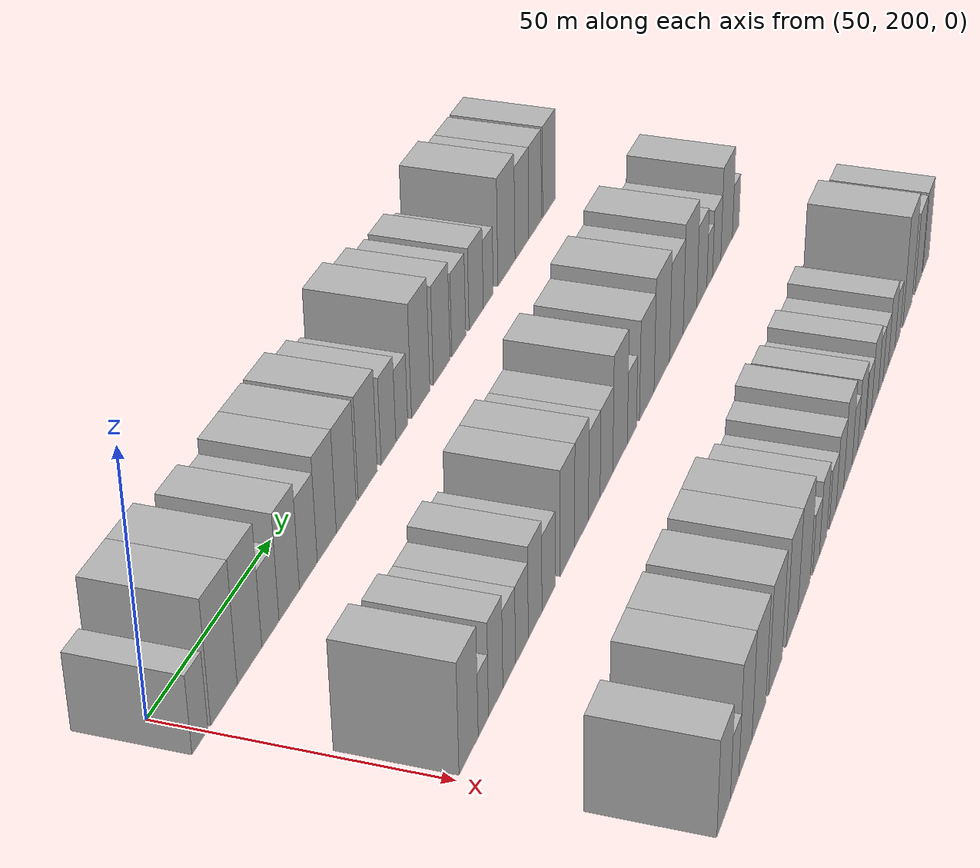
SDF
<sdf version="1.6">
 <world name="default">
  <model name="building_63">
   <static>1</static>
   <pose>50.0000 197.3361 0 0.000000 0.000000 0.000000</pose>
   <link name="link">
    <pose>0 0 7.50 0 0 0</pose>
    <collision name="collision"><geometry><box><size>20.0000 6.0712 15.0000</size></box></geometry></collision>
    <visual name="visual">
     <cast_shadows>0</cast_shadows>
     <geometry><box><size>20.0000 6.0712 15.0000</size></box></geometry>
     <material>
      <script>
       <uri>model://HANNAS_wall/materials/scripts</uri>
       <uri>model://HANNAS_wall/materials/textures</uri>
       <name>vrc/HANNAS_wall</name>
      </script>
     </material>
    </visual>
   </link>
  </model>
  <model name="building_64">
   <static>1</static>
   <pose>50.0000 206.5770 0 0.000000 0.000000 0.000000</pose>
   <link name="link">
    <pose>0 0 12.00 0 0 0</pose>
    <collision name="collision"><geometry><box><size>20.0000 10.4105 24.0000</size></box></geometry></collision>
    <visual name="visual">
     <cast_shadows>0</cast_shadows>
     <geometry><box><size>20.0000 10.4105 24.0000</size></box></geometry>
     <material>
      <script>
       <uri>model://HANNAS_wall/materials/scripts</uri>
       <uri>model://HANNAS_wall/materials/textures</uri>
       <name>vrc/HANNAS_wall</name>
      </script>
     </material>
    </visual>
   </link>
  </model>
  <model name="building_65">
   <static>1</static>
   <pose>50.0000 216.7912 0 0.000000 0.000000 0.000000</pose>
   <link name="link">
    <pose>0 0 12.00 0 0 0</pose>
    <collision name="collision"><geometry><box><size>20.0000 10.0179 24.0000</size></box></geometry></collision>
    <visual name="visual">
     <cast_shadows>0</cast_shadows>
     <geometry><box><size>20.0000 10.0179 24.0000</size></box></geometry>
     <material>
      <script>
       <uri>model://HANNAS_wall/materials/scripts</uri>
       <uri>model://HANNAS_wall/materials/textures</uri>
       <name>vrc/HANNAS_wall</name>
      </script>
     </material>
    </visual>
   </link>
  </model>
  <model name="building_66">
   <static>1</static>
   <pose>50.0000 225.4448 0 0.000000 0.000000 0.000000</pose>
   <link name="link">
    <pose>0 0 7.50 0 0 0</pose>
    <collision name="collision"><geometry><box><size>20.0000 7.2893 15.0000</size></box></geometry></collision>
    <visual name="visual">
     <cast_shadows>0</cast_shadows>
     <geometry><box><size>20.0000 7.2893 15.0000</size></box></geometry>
     <material>
      <script>
       <uri>model://HANNAS_wall/materials/scripts</uri>
       <uri>model://HANNAS_wall/materials/textures</uri>
       <name>vrc/HANNAS_wall</name>
      </script>
     </material>
    </visual>
   </link>
  </model>
  <model name="building_67">
   <static>1</static>
   <pose>50.0000 233.5340 0 0.000000 0.000000 0.000000</pose>
   <link name="link">
    <pose>0 0 10.50 0 0 0</pose>
    <collision name="collision"><geometry><box><size>20.0000 8.8891 21.0000</size></box></geometry></collision>
    <visual name="visual">
     <cast_shadows>0</cast_shadows>
     <geometry><box><size>20.0000 8.8891 21.0000</size></box></geometry>
     <material>
      <script>
       <uri>model://HANNAS_wall/materials/scripts</uri>
       <uri>model://HANNAS_wall/materials/textures</uri>
       <name>vrc/HANNAS_wall</name>
      </script>
     </material>
    </visual>
   </link>
  </model>
  <model name="building_68">
   <static>1</static>
   <pose>50.0000 242.0202 0 0.000000 0.000000 0.000000</pose>
   <link name="link">
    <pose>0 0 9.00 0 0 0</pose>
    <collision name="collision"><geometry><box><size>20.0000 8.0832 18.0000</size></box></geometry></collision>
    <visual name="visual">
     <cast_shadows>0</cast_shadows>
     <geometry><box><size>20.0000 8.0832 18.0000</size></box></geometry>
     <material>
      <script>
       <uri>model://HANNAS_wall/materials/scripts</uri>
       <uri>model://HANNAS_wall/materials/textures</uri>
       <name>vrc/HANNAS_wall</name>
      </script>
     </material>
    </visual>
   </link>
  </model>
  <model name="building_69">
   <static>1</static>
   <pose>50.0000 250.4958 0 0.000000 0.000000 0.000000</pose>
   <link name="link">
    <pose>0 0 10.50 0 0 0</pose>
    <collision name="collision"><geometry><box><size>20.0000 8.8679 21.0000</size></box></geometry></collision>
    <visual name="visual">
     <cast_shadows>0</cast_shadows>
     <geometry><box><size>20.0000 8.8679 21.0000</size></box></geometry>
     <material>
      <script>
       <uri>model://HANNAS_wall/materials/scripts</uri>
       <uri>model://HANNAS_wall/materials/textures</uri>
       <name>vrc/HANNAS_wall</name>
      </script>
     </material>
    </visual>
   </link>
  </model>
  <model name="building_70">
   <static>1</static>
   <pose>50.0000 259.7075 0 0.000000 0.000000 0.000000</pose>
   <link name="link">
    <pose>0 0 10.50 0 0 0</pose>
    <collision name="collision"><geometry><box><size>20.0000 9.5554 21.0000</size></box></geometry></collision>
    <visual name="visual">
     <cast_shadows>0</cast_shadows>
     <geometry><box><size>20.0000 9.5554 21.0000</size></box></geometry>
     <material>
      <script>
       <uri>model://HANNAS_wall/materials/scripts</uri>
       <uri>model://HANNAS_wall/materials/textures</uri>
       <name>vrc/HANNAS_wall</name>
      </script>
     </material>
    </visual>
   </link>
  </model>
  <model name="building_71">
   <static>1</static>
   <pose>50.0000 270.2743 0 0.000000 0.000000 0.000000</pose>
   <link name="link">
    <pose>0 0 10.50 0 0 0</pose>
    <collision name="collision"><geometry><box><size>20.0000 9.5782 21.0000</size></box></geometry></collision>
    <visual name="visual">
     <cast_shadows>0</cast_shadows>
     <geometry><box><size>20.0000 9.5782 21.0000</size></box></geometry>
     <material>
      <script>
       <uri>model://HANNAS_wall/materials/scripts</uri>
       <uri>model://HANNAS_wall/materials/textures</uri>
       <name>vrc/HANNAS_wall</name>
      </script>
     </material>
    </visual>
   </link>
  </model>
  <model name="building_72">
   <static>1</static>
   <pose>50.0000 280.9077 0 0.000000 0.000000 0.000000</pose>
   <link name="link">
    <pose>0 0 9.00 0 0 0</pose>
    <collision name="collision"><geometry><box><size>20.0000 7.6887 18.0000</size></box></geometry></collision>
    <visual name="visual">
     <cast_shadows>0</cast_shadows>
     <geometry><box><size>20.0000 7.6887 18.0000</size></box></geometry>
     <material>
      <script>
       <uri>model://HANNAS_wall/materials/scripts</uri>
       <uri>model://HANNAS_wall/materials/textures</uri>
       <name>vrc/HANNAS_wall</name>
      </script>
     </material>
    </visual>
   </link>
  </model>
  <model name="building_73">
   <static>1</static>
   <pose>50.0000 287.9304 0 0.000000 0.000000 0.000000</pose>
   <link name="link">
    <pose>0 0 7.50 0 0 0</pose>
    <collision name="collision"><geometry><box><size>20.0000 6.3568 15.0000</size></box></geometry></collision>
    <visual name="visual">
     <cast_shadows>0</cast_shadows>
     <geometry><box><size>20.0000 6.3568 15.0000</size></box></geometry>
     <material>
      <script>
       <uri>model://HANNAS_wall/materials/scripts</uri>
       <uri>model://HANNAS_wall/materials/textures</uri>
       <name>vrc/HANNAS_wall</name>
      </script>
     </material>
    </visual>
   </link>
  </model>
  <model name="building_74">
   <static>1</static>
   <pose>50.0000 298.2210 0 0.000000 0.000000 0.000000</pose>
   <link name="link">
    <pose>0 0 12.00 0 0 0</pose>
    <collision name="collision"><geometry><box><size>20.0000 10.2245 24.0000</size></box></geometry></collision>
    <visual name="visual">
     <cast_shadows>0</cast_shadows>
     <geometry><box><size>20.0000 10.2245 24.0000</size></box></geometry>
     <material>
      <script>
       <uri>model://HANNAS_wall/materials/scripts</uri>
       <uri>model://HANNAS_wall/materials/textures</uri>
       <name>vrc/HANNAS_wall</name>
      </script>
     </material>
    </visual>
   </link>
  </model>
  <model name="building_75">
   <static>1</static>
   <pose>50.0000 310.1647 0 0.000000 0.000000 0.000000</pose>
   <link name="link">
    <pose>0 0 10.50 0 0 0</pose>
    <collision name="collision"><geometry><box><size>20.0000 9.6628 21.0000</size></box></geometry></collision>
    <visual name="visual">
     <cast_shadows>0</cast_shadows>
     <geometry><box><size>20.0000 9.6628 21.0000</size></box></geometry>
     <material>
      <script>
       <uri>model://HANNAS_wall/materials/scripts</uri>
       <uri>model://HANNAS_wall/materials/textures</uri>
       <name>vrc/HANNAS_wall</name>
      </script>
     </material>
    </visual>
   </link>
  </model>
  <model name="building_76">
   <static>1</static>
   <pose>50.0000 320.1760 0 0.000000 0.000000 0.000000</pose>
   <link name="link">
    <pose>0 0 9.00 0 0 0</pose>
    <collision name="collision"><geometry><box><size>20.0000 8.3598 18.0000</size></box></geometry></collision>
    <visual name="visual">
     <cast_shadows>0</cast_shadows>
     <geometry><box><size>20.0000 8.3598 18.0000</size></box></geometry>
     <material>
      <script>
       <uri>model://HANNAS_wall/materials/scripts</uri>
       <uri>model://HANNAS_wall/materials/textures</uri>
       <name>vrc/HANNAS_wall</name>
      </script>
     </material>
    </visual>
   </link>
  </model>
  <model name="building_77">
   <static>1</static>
   <pose>50.0000 330.7754 0 0.000000 0.000000 0.000000</pose>
   <link name="link">
    <pose>0 0 9.00 0 0 0</pose>
    <collision name="collision"><geometry><box><size>20.0000 8.8390 18.0000</size></box></geometry></collision>
    <visual name="visual">
     <cast_shadows>0</cast_shadows>
     <geometry><box><size>20.0000 8.8390 18.0000</size></box></geometry>
     <material>
      <script>
       <uri>model://HANNAS_wall/materials/scripts</uri>
       <uri>model://HANNAS_wall/materials/textures</uri>
       <name>vrc/HANNAS_wall</name>
      </script>
     </material>
    </visual>
   </link>
  </model>
  <model name="building_78">
   <static>1</static>
   <pose>50.0000 338.3656 0 0.000000 0.000000 0.000000</pose>
   <link name="link">
    <pose>0 0 7.50 0 0 0</pose>
    <collision name="collision"><geometry><box><size>20.0000 6.3414 15.0000</size></box></geometry></collision>
    <visual name="visual">
     <cast_shadows>0</cast_shadows>
     <geometry><box><size>20.0000 6.3414 15.0000</size></box></geometry>
     <material>
      <script>
       <uri>model://HANNAS_wall/materials/scripts</uri>
       <uri>model://HANNAS_wall/materials/textures</uri>
       <name>vrc/HANNAS_wall</name>
      </script>
     </material>
    </visual>
   </link>
  </model>
  <model name="building_79">
   <static>1</static>
   <pose>50.0000 350.1771 0 0.000000 0.000000 0.000000</pose>
   <link name="link">
    <pose>0 0 12.00 0 0 0</pose>
    <collision name="collision"><geometry><box><size>20.0000 11.2818 24.0000</size></box></geometry></collision>
    <visual name="visual">
     <cast_shadows>0</cast_shadows>
     <geometry><box><size>20.0000 11.2818 24.0000</size></box></geometry>
     <material>
      <script>
       <uri>model://HANNAS_wall/materials/scripts</uri>
       <uri>model://HANNAS_wall/materials/textures</uri>
       <name>vrc/HANNAS_wall</name>
      </script>
     </material>
    </visual>
   </link>
  </model>
  <model name="building_80">
   <static>1</static>
   <pose>50.0000 360.5152 0 0.000000 0.000000 0.000000</pose>
   <link name="link">
    <pose>0 0 10.50 0 0 0</pose>
    <collision name="collision"><geometry><box><size>20.0000 9.3943 21.0000</size></box></geometry></collision>
    <visual name="visual">
     <cast_shadows>0</cast_shadows>
     <geometry><box><size>20.0000 9.3943 21.0000</size></box></geometry>
     <material>
      <script>
       <uri>model://HANNAS_wall/materials/scripts</uri>
       <uri>model://HANNAS_wall/materials/textures</uri>
       <name>vrc/HANNAS_wall</name>
      </script>
     </material>
    </visual>
   </link>
  </model>
  <model name="building_81">
   <static>1</static>
   <pose>50.0000 369.6231 0 0.000000 0.000000 0.000000</pose>
   <link name="link">
    <pose>0 0 10.50 0 0 0</pose>
    <collision name="collision"><geometry><box><size>20.0000 8.8216 21.0000</size></box></geometry></collision>
    <visual name="visual">
     <cast_shadows>0</cast_shadows>
     <geometry><box><size>20.0000 8.8216 21.0000</size></box></geometry>
     <material>
      <script>
       <uri>model://HANNAS_wall/materials/scripts</uri>
       <uri>model://HANNAS_wall/materials/textures</uri>
       <name>vrc/HANNAS_wall</name>
      </script>
     </material>
    </visual>
   </link>
  </model>
  <model name="building_82">
   <static>1</static>
   <pose>50.0000 379.5538 0 0.000000 0.000000 0.000000</pose>
   <link name="link">
    <pose>0 0 10.50 0 0 0</pose>
    <collision name="collision"><geometry><box><size>20.0000 9.0398 21.0000</size></box></geometry></collision>
    <visual name="visual">
     <cast_shadows>0</cast_shadows>
     <geometry><box><size>20.0000 9.0398 21.0000</size></box></geometry>
     <material>
      <script>
       <uri>model://HANNAS_wall/materials/scripts</uri>
       <uri>model://HANNAS_wall/materials/textures</uri>
       <name>vrc/HANNAS_wall</name>
      </script>
     </material>
    </visual>
   </link>
  </model>
  <model name="building_151">
   <static>1</static>
   <pose>90.0000 205.9098 0 0.000000 0.000000 0.000000</pose>
   <link name="link">
    <pose>0 0 10.50 0 0 0</pose>
    <collision name="collision"><geometry><box><size>20.0000 9.1450 21.0000</size></box></geometry></collision>
    <visual name="visual">
     <cast_shadows>0</cast_shadows>
     <geometry><box><size>20.0000 9.1450 21.0000</size></box></geometry>
     <material>
      <script>
       <uri>model://HANNAS_wall/materials/scripts</uri>
       <uri>model://HANNAS_wall/materials/textures</uri>
       <name>vrc/HANNAS_wall</name>
      </script>
     </material>
    </visual>
   </link>
  </model>
  <model name="building_152">
   <static>1</static>
   <pose>90.0000 213.0103 0 0.000000 0.000000 0.000000</pose>
   <link name="link">
    <pose>0 0 6.00 0 0 0</pose>
    <collision name="collision"><geometry><box><size>20.0000 5.0562 12.0000</size></box></geometry></collision>
    <visual name="visual">
     <cast_shadows>0</cast_shadows>
     <geometry><box><size>20.0000 5.0562 12.0000</size></box></geometry>
     <material>
      <script>
       <uri>model://HANNAS_wall/materials/scripts</uri>
       <uri>model://HANNAS_wall/materials/textures</uri>
       <name>vrc/HANNAS_wall</name>
      </script>
     </material>
    </visual>
   </link>
  </model>
  <model name="building_153">
   <static>1</static>
   <pose>90.0000 219.1524 0 0.000000 0.000000 0.000000</pose>
   <link name="link">
    <pose>0 0 9.00 0 0 0</pose>
    <collision name="collision"><geometry><box><size>20.0000 7.2279 18.0000</size></box></geometry></collision>
    <visual name="visual">
     <cast_shadows>0</cast_shadows>
     <geometry><box><size>20.0000 7.2279 18.0000</size></box></geometry>
     <material>
      <script>
       <uri>model://HANNAS_wall/materials/scripts</uri>
       <uri>model://HANNAS_wall/materials/textures</uri>
       <name>vrc/HANNAS_wall</name>
      </script>
     </material>
    </visual>
   </link>
  </model>
  <model name="building_154">
   <static>1</static>
   <pose>90.0000 226.0284 0 0.000000 0.000000 0.000000</pose>
   <link name="link">
    <pose>0 0 7.50 0 0 0</pose>
    <collision name="collision"><geometry><box><size>20.0000 6.5243 15.0000</size></box></geometry></collision>
    <visual name="visual">
     <cast_shadows>0</cast_shadows>
     <geometry><box><size>20.0000 6.5243 15.0000</size></box></geometry>
     <material>
      <script>
       <uri>model://HANNAS_wall/materials/scripts</uri>
       <uri>model://HANNAS_wall/materials/textures</uri>
       <name>vrc/HANNAS_wall</name>
      </script>
     </material>
    </visual>
   </link>
  </model>
  <model name="building_155">
   <static>1</static>
   <pose>90.0000 232.6891 0 0.000000 0.000000 0.000000</pose>
   <link name="link">
    <pose>0 0 7.50 0 0 0</pose>
    <collision name="collision"><geometry><box><size>20.0000 6.7970 15.0000</size></box></geometry></collision>
    <visual name="visual">
     <cast_shadows>0</cast_shadows>
     <geometry><box><size>20.0000 6.7970 15.0000</size></box></geometry>
     <material>
      <script>
       <uri>model://HANNAS_wall/materials/scripts</uri>
       <uri>model://HANNAS_wall/materials/textures</uri>
       <name>vrc/HANNAS_wall</name>
      </script>
     </material>
    </visual>
   </link>
  </model>
  <model name="building_156">
   <static>1</static>
   <pose>90.0000 239.8294 0 0.000000 0.000000 0.000000</pose>
   <link name="link">
    <pose>0 0 9.00 0 0 0</pose>
    <collision name="collision"><geometry><box><size>20.0000 7.4837 18.0000</size></box></geometry></collision>
    <visual name="visual">
     <cast_shadows>0</cast_shadows>
     <geometry><box><size>20.0000 7.4837 18.0000</size></box></geometry>
     <material>
      <script>
       <uri>model://HANNAS_wall/materials/scripts</uri>
       <uri>model://HANNAS_wall/materials/textures</uri>
       <name>vrc/HANNAS_wall</name>
      </script>
     </material>
    </visual>
   </link>
  </model>
  <model name="building_157">
   <static>1</static>
   <pose>90.0000 247.2647 0 0.000000 0.000000 0.000000</pose>
   <link name="link">
    <pose>0 0 7.50 0 0 0</pose>
    <collision name="collision"><geometry><box><size>20.0000 7.3870 15.0000</size></box></geometry></collision>
    <visual name="visual">
     <cast_shadows>0</cast_shadows>
     <geometry><box><size>20.0000 7.3870 15.0000</size></box></geometry>
     <material>
      <script>
       <uri>model://HANNAS_wall/materials/scripts</uri>
       <uri>model://HANNAS_wall/materials/textures</uri>
       <name>vrc/HANNAS_wall</name>
      </script>
     </material>
    </visual>
   </link>
  </model>
  <model name="building_158">
   <static>1</static>
   <pose>90.0000 258.1683 0 0.000000 0.000000 0.000000</pose>
   <link name="link">
    <pose>0 0 10.50 0 0 0</pose>
    <collision name="collision"><geometry><box><size>20.0000 8.4202 21.0000</size></box></geometry></collision>
    <visual name="visual">
     <cast_shadows>0</cast_shadows>
     <geometry><box><size>20.0000 8.4202 21.0000</size></box></geometry>
     <material>
      <script>
       <uri>model://HANNAS_wall/materials/scripts</uri>
       <uri>model://HANNAS_wall/materials/textures</uri>
       <name>vrc/HANNAS_wall</name>
      </script>
     </material>
    </visual>
   </link>
  </model>
  <model name="building_159">
   <static>1</static>
   <pose>90.0000 266.5887 0 0.000000 0.000000 0.000000</pose>
   <link name="link">
    <pose>0 0 10.50 0 0 0</pose>
    <collision name="collision"><geometry><box><size>20.0000 8.4207 21.0000</size></box></geometry></collision>
    <visual name="visual">
     <cast_shadows>0</cast_shadows>
     <geometry><box><size>20.0000 8.4207 21.0000</size></box></geometry>
     <material>
      <script>
       <uri>model://HANNAS_wall/materials/scripts</uri>
       <uri>model://HANNAS_wall/materials/textures</uri>
       <name>vrc/HANNAS_wall</name>
      </script>
     </material>
    </visual>
   </link>
  </model>
  <model name="building_160">
   <static>1</static>
   <pose>90.0000 274.4345 0 0.000000 0.000000 0.000000</pose>
   <link name="link">
    <pose>0 0 9.00 0 0 0</pose>
    <collision name="collision"><geometry><box><size>20.0000 7.2709 18.0000</size></box></geometry></collision>
    <visual name="visual">
     <cast_shadows>0</cast_shadows>
     <geometry><box><size>20.0000 7.2709 18.0000</size></box></geometry>
     <material>
      <script>
       <uri>model://HANNAS_wall/materials/scripts</uri>
       <uri>model://HANNAS_wall/materials/textures</uri>
       <name>vrc/HANNAS_wall</name>
      </script>
     </material>
    </visual>
   </link>
  </model>
  <model name="building_161">
   <static>1</static>
   <pose>90.0000 282.1580 0 0.000000 0.000000 0.000000</pose>
   <link name="link">
    <pose>0 0 9.00 0 0 0</pose>
    <collision name="collision"><geometry><box><size>20.0000 8.1762 18.0000</size></box></geometry></collision>
    <visual name="visual">
     <cast_shadows>0</cast_shadows>
     <geometry><box><size>20.0000 8.1762 18.0000</size></box></geometry>
     <material>
      <script>
       <uri>model://HANNAS_wall/materials/scripts</uri>
       <uri>model://HANNAS_wall/materials/textures</uri>
       <name>vrc/HANNAS_wall</name>
      </script>
     </material>
    </visual>
   </link>
  </model>
  <model name="building_162">
   <static>1</static>
   <pose>90.0000 291.0728 0 0.000000 0.000000 0.000000</pose>
   <link name="link">
    <pose>0 0 12.00 0 0 0</pose>
    <collision name="collision"><geometry><box><size>20.0000 9.6533 24.0000</size></box></geometry></collision>
    <visual name="visual">
     <cast_shadows>0</cast_shadows>
     <geometry><box><size>20.0000 9.6533 24.0000</size></box></geometry>
     <material>
      <script>
       <uri>model://HANNAS_wall/materials/scripts</uri>
       <uri>model://HANNAS_wall/materials/textures</uri>
       <name>vrc/HANNAS_wall</name>
      </script>
     </material>
    </visual>
   </link>
  </model>
  <model name="building_163">
   <static>1</static>
   <pose>90.0000 299.0580 0 0.000000 0.000000 0.000000</pose>
   <link name="link">
    <pose>0 0 7.50 0 0 0</pose>
    <collision name="collision"><geometry><box><size>20.0000 6.3171 15.0000</size></box></geometry></collision>
    <visual name="visual">
     <cast_shadows>0</cast_shadows>
     <geometry><box><size>20.0000 6.3171 15.0000</size></box></geometry>
     <material>
      <script>
       <uri>model://HANNAS_wall/materials/scripts</uri>
       <uri>model://HANNAS_wall/materials/textures</uri>
       <name>vrc/HANNAS_wall</name>
      </script>
     </material>
    </visual>
   </link>
  </model>
  <model name="building_164">
   <static>1</static>
   <pose>90.0000 309.4310 0 0.000000 0.000000 0.000000</pose>
   <link name="link">
    <pose>0 0 10.50 0 0 0</pose>
    <collision name="collision"><geometry><box><size>20.0000 10.4288 21.0000</size></box></geometry></collision>
    <visual name="visual">
     <cast_shadows>0</cast_shadows>
     <geometry><box><size>20.0000 10.4288 21.0000</size></box></geometry>
     <material>
      <script>
       <uri>model://HANNAS_wall/materials/scripts</uri>
       <uri>model://HANNAS_wall/materials/textures</uri>
       <name>vrc/HANNAS_wall</name>
      </script>
     </material>
    </visual>
   </link>
  </model>
  <model name="building_165">
   <static>1</static>
   <pose>90.0000 320.3245 0 0.000000 0.000000 0.000000</pose>
   <link name="link">
    <pose>0 0 12.00 0 0 0</pose>
    <collision name="collision"><geometry><box><size>20.0000 11.3583 24.0000</size></box></geometry></collision>
    <visual name="visual">
     <cast_shadows>0</cast_shadows>
     <geometry><box><size>20.0000 11.3583 24.0000</size></box></geometry>
     <material>
      <script>
       <uri>model://HANNAS_wall/materials/scripts</uri>
       <uri>model://HANNAS_wall/materials/textures</uri>
       <name>vrc/HANNAS_wall</name>
      </script>
     </material>
    </visual>
   </link>
  </model>
  <model name="building_166">
   <static>1</static>
   <pose>90.0000 331.2398 0 0.000000 0.000000 0.000000</pose>
   <link name="link">
    <pose>0 0 10.50 0 0 0</pose>
    <collision name="collision"><geometry><box><size>20.0000 10.4722 21.0000</size></box></geometry></collision>
    <visual name="visual">
     <cast_shadows>0</cast_shadows>
     <geometry><box><size>20.0000 10.4722 21.0000</size></box></geometry>
     <material>
      <script>
       <uri>model://HANNAS_wall/materials/scripts</uri>
       <uri>model://HANNAS_wall/materials/textures</uri>
       <name>vrc/HANNAS_wall</name>
      </script>
     </material>
    </visual>
   </link>
  </model>
  <model name="building_167">
   <static>1</static>
   <pose>90.0000 341.8712 0 0.000000 0.000000 0.000000</pose>
   <link name="link">
    <pose>0 0 12.00 0 0 0</pose>
    <collision name="collision"><geometry><box><size>20.0000 10.7906 24.0000</size></box></geometry></collision>
    <visual name="visual">
     <cast_shadows>0</cast_shadows>
     <geometry><box><size>20.0000 10.7906 24.0000</size></box></geometry>
     <material>
      <script>
       <uri>model://HANNAS_wall/materials/scripts</uri>
       <uri>model://HANNAS_wall/materials/textures</uri>
       <name>vrc/HANNAS_wall</name>
      </script>
     </material>
    </visual>
   </link>
  </model>
  <model name="building_168">
   <static>1</static>
   <pose>90.0000 351.3881 0 0.000000 0.000000 0.000000</pose>
   <link name="link">
    <pose>0 0 9.00 0 0 0</pose>
    <collision name="collision"><geometry><box><size>20.0000 8.2434 18.0000</size></box></geometry></collision>
    <visual name="visual">
     <cast_shadows>0</cast_shadows>
     <geometry><box><size>20.0000 8.2434 18.0000</size></box></geometry>
     <material>
      <script>
       <uri>model://HANNAS_wall/materials/scripts</uri>
       <uri>model://HANNAS_wall/materials/textures</uri>
       <name>vrc/HANNAS_wall</name>
      </script>
     </material>
    </visual>
   </link>
  </model>
  <model name="building_169">
   <static>1</static>
   <pose>90.0000 357.9302 0 0.000000 0.000000 0.000000</pose>
   <link name="link">
    <pose>0 0 6.00 0 0 0</pose>
    <collision name="collision"><geometry><box><size>20.0000 4.8408 12.0000</size></box></geometry></collision>
    <visual name="visual">
     <cast_shadows>0</cast_shadows>
     <geometry><box><size>20.0000 4.8408 12.0000</size></box></geometry>
     <material>
      <script>
       <uri>model://HANNAS_wall/materials/scripts</uri>
       <uri>model://HANNAS_wall/materials/textures</uri>
       <name>vrc/HANNAS_wall</name>
      </script>
     </material>
    </visual>
   </link>
  </model>
  <model name="building_170">
   <static>1</static>
   <pose>90.0000 363.8466 0 0.000000 0.000000 0.000000</pose>
   <link name="link">
    <pose>0 0 7.50 0 0 0</pose>
    <collision name="collision"><geometry><box><size>20.0000 6.9919 15.0000</size></box></geometry></collision>
    <visual name="visual">
     <cast_shadows>0</cast_shadows>
     <geometry><box><size>20.0000 6.9919 15.0000</size></box></geometry>
     <material>
      <script>
       <uri>model://HANNAS_wall/materials/scripts</uri>
       <uri>model://HANNAS_wall/materials/textures</uri>
       <name>vrc/HANNAS_wall</name>
      </script>
     </material>
    </visual>
   </link>
  </model>
  <model name="building_171">
   <static>1</static>
   <pose>90.0000 372.4209 0 0.000000 0.000000 0.000000</pose>
   <link name="link">
    <pose>0 0 10.50 0 0 0</pose>
    <collision name="collision"><geometry><box><size>20.0000 10.1566 21.0000</size></box></geometry></collision>
    <visual name="visual">
     <cast_shadows>0</cast_shadows>
     <geometry><box><size>20.0000 10.1566 21.0000</size></box></geometry>
     <material>
      <script>
       <uri>model://HANNAS_wall/materials/scripts</uri>
       <uri>model://HANNAS_wall/materials/textures</uri>
       <name>vrc/HANNAS_wall</name>
      </script>
     </material>
    </visual>
   </link>
  </model>
  <model name="building_172">
   <static>1</static>
   <pose>90.0000 380.4873 0 0.000000 0.000000 0.000000</pose>
   <link name="link">
    <pose>0 0 6.00 0 0 0</pose>
    <collision name="collision"><geometry><box><size>20.0000 5.9762 12.0000</size></box></geometry></collision>
    <visual name="visual">
     <cast_shadows>0</cast_shadows>
     <geometry><box><size>20.0000 5.9762 12.0000</size></box></geometry>
     <material>
      <script>
       <uri>model://HANNAS_wall/materials/scripts</uri>
       <uri>model://HANNAS_wall/materials/textures</uri>
       <name>vrc/HANNAS_wall</name>
      </script>
     </material>
    </visual>
   </link>
  </model>
  <model name="building_238">
   <static>1</static>
   <pose>130.0000 203.0936 0 0.000000 0.000000 0.000000</pose>
   <link name="link">
    <pose>0 0 9.00 0 0 0</pose>
    <collision name="collision"><geometry><box><size>20.0000 8.4165 18.0000</size></box></geometry></collision>
    <visual name="visual">
     <cast_shadows>0</cast_shadows>
     <geometry><box><size>20.0000 8.4165 18.0000</size></box></geometry>
     <material>
      <script>
       <uri>model://HANNAS_wall/materials/scripts</uri>
       <uri>model://HANNAS_wall/materials/textures</uri>
       <name>vrc/HANNAS_wall</name>
      </script>
     </material>
    </visual>
   </link>
  </model>
  <model name="building_239">
   <static>1</static>
   <pose>130.0000 210.0374 0 0.000000 0.000000 0.000000</pose>
   <link name="link">
    <pose>0 0 6.00 0 0 0</pose>
    <collision name="collision"><geometry><box><size>20.0000 5.4712 12.0000</size></box></geometry></collision>
    <visual name="visual">
     <cast_shadows>0</cast_shadows>
     <geometry><box><size>20.0000 5.4712 12.0000</size></box></geometry>
     <material>
      <script>
       <uri>model://HANNAS_wall/materials/scripts</uri>
       <uri>model://HANNAS_wall/materials/textures</uri>
       <name>vrc/HANNAS_wall</name>
      </script>
     </material>
    </visual>
   </link>
  </model>
  <model name="building_240">
   <static>1</static>
   <pose>130.0000 217.0909 0 0.000000 0.000000 0.000000</pose>
   <link name="link">
    <pose>0 0 10.50 0 0 0</pose>
    <collision name="collision"><geometry><box><size>20.0000 8.6358 21.0000</size></box></geometry></collision>
    <visual name="visual">
     <cast_shadows>0</cast_shadows>
     <geometry><box><size>20.0000 8.6358 21.0000</size></box></geometry>
     <material>
      <script>
       <uri>model://HANNAS_wall/materials/scripts</uri>
       <uri>model://HANNAS_wall/materials/textures</uri>
       <name>vrc/HANNAS_wall</name>
      </script>
     </material>
    </visual>
   </link>
  </model>
  <model name="building_241">
   <static>1</static>
   <pose>130.0000 226.1619 0 0.000000 0.000000 0.000000</pose>
   <link name="link">
    <pose>0 0 10.50 0 0 0</pose>
    <collision name="collision"><geometry><box><size>20.0000 9.5062 21.0000</size></box></geometry></collision>
    <visual name="visual">
     <cast_shadows>0</cast_shadows>
     <geometry><box><size>20.0000 9.5062 21.0000</size></box></geometry>
     <material>
      <script>
       <uri>model://HANNAS_wall/materials/scripts</uri>
       <uri>model://HANNAS_wall/materials/textures</uri>
       <name>vrc/HANNAS_wall</name>
      </script>
     </material>
    </visual>
   </link>
  </model>
  <model name="building_242">
   <static>1</static>
   <pose>130.0000 237.8422 0 0.000000 0.000000 0.000000</pose>
   <link name="link">
    <pose>0 0 10.50 0 0 0</pose>
    <collision name="collision"><geometry><box><size>20.0000 9.8543 21.0000</size></box></geometry></collision>
    <visual name="visual">
     <cast_shadows>0</cast_shadows>
     <geometry><box><size>20.0000 9.8543 21.0000</size></box></geometry>
     <material>
      <script>
       <uri>model://HANNAS_wall/materials/scripts</uri>
       <uri>model://HANNAS_wall/materials/textures</uri>
       <name>vrc/HANNAS_wall</name>
      </script>
     </material>
    </visual>
   </link>
  </model>
  <model name="building_243">
   <static>1</static>
   <pose>130.0000 250.1531 0 0.000000 0.000000 0.000000</pose>
   <link name="link">
    <pose>0 0 10.50 0 0 0</pose>
    <collision name="collision"><geometry><box><size>20.0000 8.7676 21.0000</size></box></geometry></collision>
    <visual name="visual">
     <cast_shadows>0</cast_shadows>
     <geometry><box><size>20.0000 8.7676 21.0000</size></box></geometry>
     <material>
      <script>
       <uri>model://HANNAS_wall/materials/scripts</uri>
       <uri>model://HANNAS_wall/materials/textures</uri>
       <name>vrc/HANNAS_wall</name>
      </script>
     </material>
    </visual>
   </link>
  </model>
  <model name="building_244">
   <static>1</static>
   <pose>130.0000 259.3817 0 0.000000 0.000000 0.000000</pose>
   <link name="link">
    <pose>0 0 10.50 0 0 0</pose>
    <collision name="collision"><geometry><box><size>20.0000 9.6894 21.0000</size></box></geometry></collision>
    <visual name="visual">
     <cast_shadows>0</cast_shadows>
     <geometry><box><size>20.0000 9.6894 21.0000</size></box></geometry>
     <material>
      <script>
       <uri>model://HANNAS_wall/materials/scripts</uri>
       <uri>model://HANNAS_wall/materials/textures</uri>
       <name>vrc/HANNAS_wall</name>
      </script>
     </material>
    </visual>
   </link>
  </model>
  <model name="building_245">
   <static>1</static>
   <pose>130.0000 269.0132 0 0.000000 0.000000 0.000000</pose>
   <link name="link">
    <pose>0 0 6.00 0 0 0</pose>
    <collision name="collision"><geometry><box><size>20.0000 5.5736 12.0000</size></box></geometry></collision>
    <visual name="visual">
     <cast_shadows>0</cast_shadows>
     <geometry><box><size>20.0000 5.5736 12.0000</size></box></geometry>
     <material>
      <script>
       <uri>model://HANNAS_wall/materials/scripts</uri>
       <uri>model://HANNAS_wall/materials/textures</uri>
       <name>vrc/HANNAS_wall</name>
      </script>
     </material>
    </visual>
   </link>
  </model>
  <model name="building_246">
   <static>1</static>
   <pose>130.0000 274.9493 0 0.000000 0.000000 0.000000</pose>
   <link name="link">
    <pose>0 0 7.50 0 0 0</pose>
    <collision name="collision"><geometry><box><size>20.0000 6.2987 15.0000</size></box></geometry></collision>
    <visual name="visual">
     <cast_shadows>0</cast_shadows>
     <geometry><box><size>20.0000 6.2987 15.0000</size></box></geometry>
     <material>
      <script>
       <uri>model://HANNAS_wall/materials/scripts</uri>
       <uri>model://HANNAS_wall/materials/textures</uri>
       <name>vrc/HANNAS_wall</name>
      </script>
     </material>
    </visual>
   </link>
  </model>
  <model name="building_247">
   <static>1</static>
   <pose>130.0000 283.0550 0 0.000000 0.000000 0.000000</pose>
   <link name="link">
    <pose>0 0 6.00 0 0 0</pose>
    <collision name="collision"><geometry><box><size>20.0000 5.9126 12.0000</size></box></geometry></collision>
    <visual name="visual">
     <cast_shadows>0</cast_shadows>
     <geometry><box><size>20.0000 5.9126 12.0000</size></box></geometry>
     <material>
      <script>
       <uri>model://HANNAS_wall/materials/scripts</uri>
       <uri>model://HANNAS_wall/materials/textures</uri>
       <name>vrc/HANNAS_wall</name>
      </script>
     </material>
    </visual>
   </link>
  </model>
  <model name="building_248">
   <static>1</static>
   <pose>130.0000 289.2572 0 0.000000 0.000000 0.000000</pose>
   <link name="link">
    <pose>0 0 7.50 0 0 0</pose>
    <collision name="collision"><geometry><box><size>20.0000 6.4918 15.0000</size></box></geometry></collision>
    <visual name="visual">
     <cast_shadows>0</cast_shadows>
     <geometry><box><size>20.0000 6.4918 15.0000</size></box></geometry>
     <material>
      <script>
       <uri>model://HANNAS_wall/materials/scripts</uri>
       <uri>model://HANNAS_wall/materials/textures</uri>
       <name>vrc/HANNAS_wall</name>
      </script>
     </material>
    </visual>
   </link>
  </model>
  <model name="building_249">
   <static>1</static>
   <pose>130.0000 296.3644 0 0.000000 0.000000 0.000000</pose>
   <link name="link">
    <pose>0 0 9.00 0 0 0</pose>
    <collision name="collision"><geometry><box><size>20.0000 7.7228 18.0000</size></box></geometry></collision>
    <visual name="visual">
     <cast_shadows>0</cast_shadows>
     <geometry><box><size>20.0000 7.7228 18.0000</size></box></geometry>
     <material>
      <script>
       <uri>model://HANNAS_wall/materials/scripts</uri>
       <uri>model://HANNAS_wall/materials/textures</uri>
       <name>vrc/HANNAS_wall</name>
      </script>
     </material>
    </visual>
   </link>
  </model>
  <model name="building_250">
   <static>1</static>
   <pose>130.0000 302.8524 0 0.000000 0.000000 0.000000</pose>
   <link name="link">
    <pose>0 0 6.00 0 0 0</pose>
    <collision name="collision"><geometry><box><size>20.0000 5.2532 12.0000</size></box></geometry></collision>
    <visual name="visual">
     <cast_shadows>0</cast_shadows>
     <geometry><box><size>20.0000 5.2532 12.0000</size></box></geometry>
     <material>
      <script>
       <uri>model://HANNAS_wall/materials/scripts</uri>
       <uri>model://HANNAS_wall/materials/textures</uri>
       <name>vrc/HANNAS_wall</name>
      </script>
     </material>
    </visual>
   </link>
  </model>
  <model name="building_251">
   <static>1</static>
   <pose>130.0000 308.7912 0 0.000000 0.000000 0.000000</pose>
   <link name="link">
    <pose>0 0 7.50 0 0 0</pose>
    <collision name="collision"><geometry><box><size>20.0000 6.6244 15.0000</size></box></geometry></collision>
    <visual name="visual">
     <cast_shadows>0</cast_shadows>
     <geometry><box><size>20.0000 6.6244 15.0000</size></box></geometry>
     <material>
      <script>
       <uri>model://HANNAS_wall/materials/scripts</uri>
       <uri>model://HANNAS_wall/materials/textures</uri>
       <name>vrc/HANNAS_wall</name>
      </script>
     </material>
    </visual>
   </link>
  </model>
  <model name="building_252">
   <static>1</static>
   <pose>130.0000 315.9194 0 0.000000 0.000000 0.000000</pose>
   <link name="link">
    <pose>0 0 6.00 0 0 0</pose>
    <collision name="collision"><geometry><box><size>20.0000 5.6321 12.0000</size></box></geometry></collision>
    <visual name="visual">
     <cast_shadows>0</cast_shadows>
     <geometry><box><size>20.0000 5.6321 12.0000</size></box></geometry>
     <material>
      <script>
       <uri>model://HANNAS_wall/materials/scripts</uri>
       <uri>model://HANNAS_wall/materials/textures</uri>
       <name>vrc/HANNAS_wall</name>
      </script>
     </material>
    </visual>
   </link>
  </model>
  <model name="building_253">
   <static>1</static>
   <pose>130.0000 322.0952 0 0.000000 0.000000 0.000000</pose>
   <link name="link">
    <pose>0 0 7.50 0 0 0</pose>
    <collision name="collision"><geometry><box><size>20.0000 6.7194 15.0000</size></box></geometry></collision>
    <visual name="visual">
     <cast_shadows>0</cast_shadows>
     <geometry><box><size>20.0000 6.7194 15.0000</size></box></geometry>
     <material>
      <script>
       <uri>model://HANNAS_wall/materials/scripts</uri>
       <uri>model://HANNAS_wall/materials/textures</uri>
       <name>vrc/HANNAS_wall</name>
      </script>
     </material>
    </visual>
   </link>
  </model>
  <model name="building_254">
   <static>1</static>
   <pose>130.0000 327.8761 0 0.000000 0.000000 0.000000</pose>
   <link name="link">
    <pose>0 0 6.00 0 0 0</pose>
    <collision name="collision"><geometry><box><size>20.0000 4.8424 12.0000</size></box></geometry></collision>
    <visual name="visual">
     <cast_shadows>0</cast_shadows>
     <geometry><box><size>20.0000 4.8424 12.0000</size></box></geometry>
     <material>
      <script>
       <uri>model://HANNAS_wall/materials/scripts</uri>
       <uri>model://HANNAS_wall/materials/textures</uri>
       <name>vrc/HANNAS_wall</name>
      </script>
     </material>
    </visual>
   </link>
  </model>
  <model name="building_255">
   <static>1</static>
   <pose>130.0000 333.0435 0 0.000000 0.000000 0.000000</pose>
   <link name="link">
    <pose>0 0 6.00 0 0 0</pose>
    <collision name="collision"><geometry><box><size>20.0000 5.4925 12.0000</size></box></geometry></collision>
    <visual name="visual">
     <cast_shadows>0</cast_shadows>
     <geometry><box><size>20.0000 5.4925 12.0000</size></box></geometry>
     <material>
      <script>
       <uri>model://HANNAS_wall/materials/scripts</uri>
       <uri>model://HANNAS_wall/materials/textures</uri>
       <name>vrc/HANNAS_wall</name>
      </script>
     </material>
    </visual>
   </link>
  </model>
  <model name="building_256">
   <static>1</static>
   <pose>130.0000 339.3184 0 0.000000 0.000000 0.000000</pose>
   <link name="link">
    <pose>0 0 7.50 0 0 0</pose>
    <collision name="collision"><geometry><box><size>20.0000 7.0573 15.0000</size></box></geometry></collision>
    <visual name="visual">
     <cast_shadows>0</cast_shadows>
     <geometry><box><size>20.0000 7.0573 15.0000</size></box></geometry>
     <material>
      <script>
       <uri>model://HANNAS_wall/materials/scripts</uri>
       <uri>model://HANNAS_wall/materials/textures</uri>
       <name>vrc/HANNAS_wall</name>
      </script>
     </material>
    </visual>
   </link>
  </model>
  <model name="building_257">
   <static>1</static>
   <pose>130.0000 345.6269 0 0.000000 0.000000 0.000000</pose>
   <link name="link">
    <pose>0 0 6.00 0 0 0</pose>
    <collision name="collision"><geometry><box><size>20.0000 5.5597 12.0000</size></box></geometry></collision>
    <visual name="visual">
     <cast_shadows>0</cast_shadows>
     <geometry><box><size>20.0000 5.5597 12.0000</size></box></geometry>
     <material>
      <script>
       <uri>model://HANNAS_wall/materials/scripts</uri>
       <uri>model://HANNAS_wall/materials/textures</uri>
       <name>vrc/HANNAS_wall</name>
      </script>
     </material>
    </visual>
   </link>
  </model>
  <model name="building_258">
   <static>1</static>
   <pose>130.0000 356.6464 0 0.000000 0.000000 0.000000</pose>
   <link name="link">
    <pose>0 0 12.00 0 0 0</pose>
    <collision name="collision"><geometry><box><size>20.0000 10.4794 24.0000</size></box></geometry></collision>
    <visual name="visual">
     <cast_shadows>0</cast_shadows>
     <geometry><box><size>20.0000 10.4794 24.0000</size></box></geometry>
     <material>
      <script>
       <uri>model://HANNAS_wall/materials/scripts</uri>
       <uri>model://HANNAS_wall/materials/textures</uri>
       <name>vrc/HANNAS_wall</name>
      </script>
     </material>
    </visual>
   </link>
  </model>
  <model name="building_259">
   <static>1</static>
   <pose>130.0000 369.0312 0 0.000000 0.000000 0.000000</pose>
   <link name="link">
    <pose>0 0 9.00 0 0 0</pose>
    <collision name="collision"><geometry><box><size>20.0000 8.2902 18.0000</size></box></geometry></collision>
    <visual name="visual">
     <cast_shadows>0</cast_shadows>
     <geometry><box><size>20.0000 8.2902 18.0000</size></box></geometry>
     <material>
      <script>
       <uri>model://HANNAS_wall/materials/scripts</uri>
       <uri>model://HANNAS_wall/materials/textures</uri>
       <name>vrc/HANNAS_wall</name>
      </script>
     </material>
    </visual>
   </link>
  </model>
  <model name="building_260">
   <static>1</static>
   <pose>130.0000 377.9141 0 0.000000 0.000000 0.000000</pose>
   <link name="link">
    <pose>0 0 9.00 0 0 0</pose>
    <collision name="collision"><geometry><box><size>20.0000 7.4755 18.0000</size></box></geometry></collision>
    <visual name="visual">
     <cast_shadows>0</cast_shadows>
     <geometry><box><size>20.0000 7.4755 18.0000</size></box></geometry>
     <material>
      <script>
       <uri>model://HANNAS_wall/materials/scripts</uri>
       <uri>model://HANNAS_wall/materials/textures</uri>
       <name>vrc/HANNAS_wall</name>
      </script>
     </material>
    </visual>
   </link>
  </model>
 </world>
</sdf>
